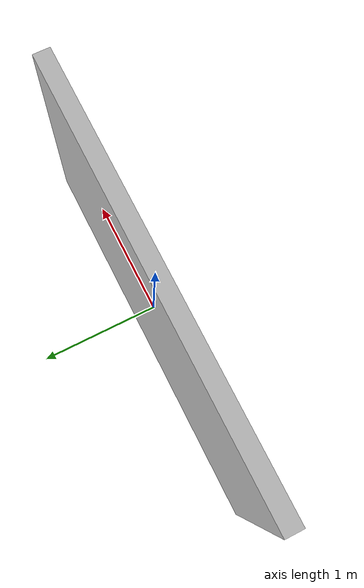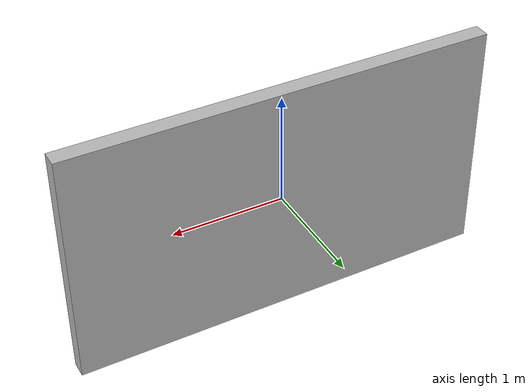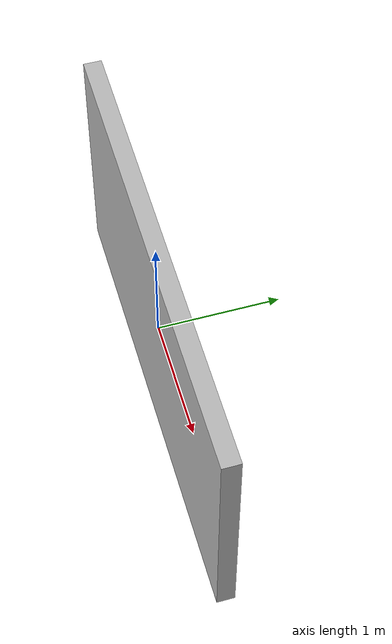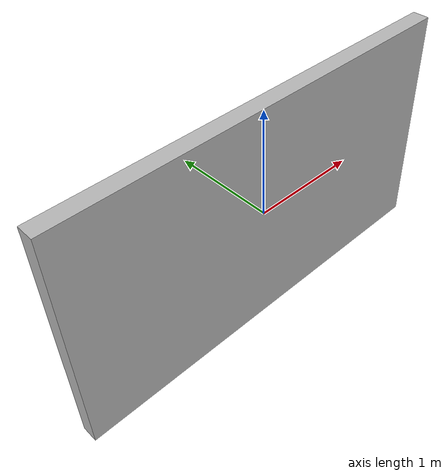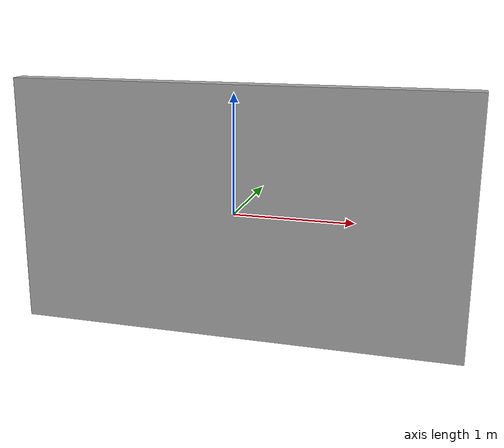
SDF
<?xml version="1.0" ?>
<sdf version="1.6">
  <model name="Flag_of_Vietnam">
    <static>true</static>
    <link name="box">
      <pose>0 0 0 0 0 0</pose>
      <collision name="collision">
        <geometry>
          <box>
              <size>3.84 0.15 2.16</size>
          </box>
        </geometry>
      </collision>
      <visual name="visual">
        <geometry>
          <box>
              <size>3.84 0.15 2.16</size>
          </box>
        </geometry>
        <material>
          <script>
            <uri>model://turtlebot3_empty_world/Flag_of_Vietnam/materials/scripts</uri>
            <uri>model://turtlebot3_empty_world/Flag_of_Vietnam/materials/textures</uri>
            <name>Flag_of_Vietnam</name>
          </script>
        </material>
      </visual>
    </link>
  </model>
</sdf>
